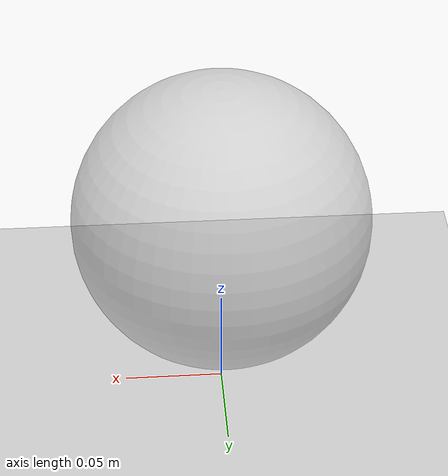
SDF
<?xml version="1.0" ?>
<sdf version="1.5">
	<world name="sky">

	    <include>
	      <uri>model://shell</uri>
	      <name>shell1</name>
	      <pose>0 0 0.1 0 0 0</pose>
	    </include>

		<include>
	      <uri>model://ground_plane</uri>
	    </include>

	    <!-- Global light source -->
	    <include>
	      <uri>model://sun</uri>
	    </include>

	    <physics name='default_physics' default='0' type='ode'>
	      <max_step_size>0.001</max_step_size>
	      <real_time_factor>1</real_time_factor>
	      <real_time_update_rate>1000</real_time_update_rate>
	    </physics>

	</world>
</sdf>

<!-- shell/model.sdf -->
<sdf version="1.6">
	<model name="shell">
		<static>0</static>
		<link name='link'>
			<pose>0 0 0 0 0 0 </pose>
			<inertial>
				<mass>0.001</mass>
				<inertia>
					<ixx>0.0001</ixx>
					<ixy>0</ixy>
					<ixz>0</ixz>
					<iyy>0.0001</iyy>
					<iyz>0</iyz>
					<izz>0.0001</izz>
				</inertia>
			</inertial>
        	<collision name='collision'>
        		<geometry>
        			<mesh>
                    <scale>1 1 1</scale>
                    <uri>model://shell/meshes/sphere.DAE</uri>
                	</mesh>
               	</geometry>
               	<surface>
               		<friction>
               			<ode>
               				<mu>100.0</mu>
               				<mu2>100.0</mu2>
               			</ode>
               		</friction>
               		<contact>
               			<ode>
               				<kp>100000.0</kp>
               				<kd>10.0</kd>
               				<max_vel>1</max_vel>
               				<min_depth>0.0</min_depth>
               			</ode>
               		</contact>
               	</surface>
        	</collision>
	        <visual name='visual'>
	        	<geometry>
	                <mesh>
	                	<scale>1 1 1</scale>
	                    <uri>model://shell/meshes/sphere.DAE</uri>
	                </mesh>
	            </geometry>
	            <material>
	            	<script>
	            		<uri>file://media/materials/scripts/gazebo.material</uri>
	            		<name>Gazebo/CustomTransparent</name>
	            	</script>
	            </material>
	        </visual>
	    </link>
	</model>
</sdf>
